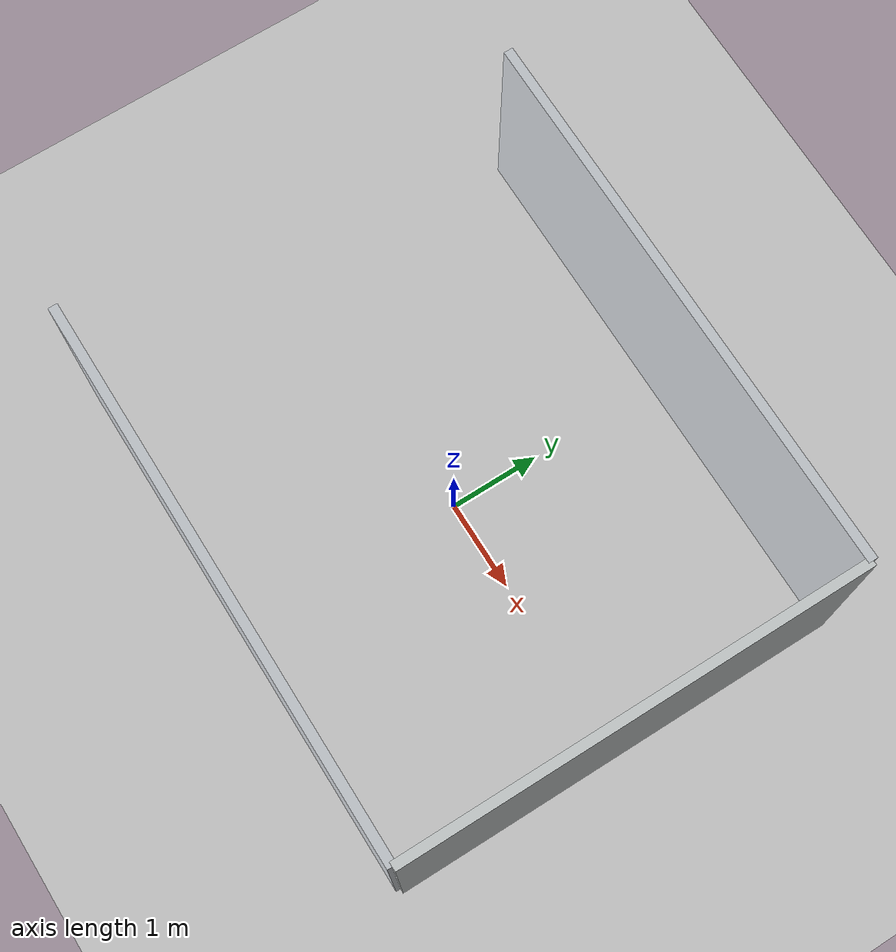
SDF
<?xml version="1.0" ?>
<sdf version="1.7">
  <world name="ur5e_lab_room">
    <include>
      <uri>model://sun</uri>
    </include>

    <include>
      <uri>model://ground_plane</uri>
    </include>

    <physics type="ode">
      <max_step_size>0.001</max_step_size>
      <real_time_factor>1.0</real_time_factor>
      <real_time_update_rate>1000</real_time_update_rate>
    </physics>

    <model name="lab_room_walls">
      <static>true</static>
      <link name="walls">
        <visual name="back_wall">
          <pose>3 0 1.25 0 0 0</pose>
          <geometry>
            <box>
              <size>0.1 5.0 2.5</size>
            </box>
          </geometry>
          <material>
            <ambient>0.8 0.82 0.82 1</ambient>
            <diffuse>0.8 0.82 0.82 1</diffuse>
          </material>
        </visual>

        <visual name="left_wall">
          <pose>0 2.5 1.25 0 0 0</pose>
          <geometry>
            <box>
              <size>6.0 0.1 2.5</size>
            </box>
          </geometry>
          <material>
            <ambient>0.78 0.8 0.82 1</ambient>
            <diffuse>0.78 0.8 0.82 1</diffuse>
          </material>
        </visual>

        <visual name="right_wall">
          <pose>0 -2.5 1.25 0 0 0</pose>
          <geometry>
            <box>
              <size>6.0 0.1 2.5</size>
            </box>
          </geometry>
          <material>
            <ambient>0.78 0.8 0.82 1</ambient>
            <diffuse>0.78 0.8 0.82 1</diffuse>
          </material>
        </visual>
      </link>
    </model>
  </world>
</sdf>
